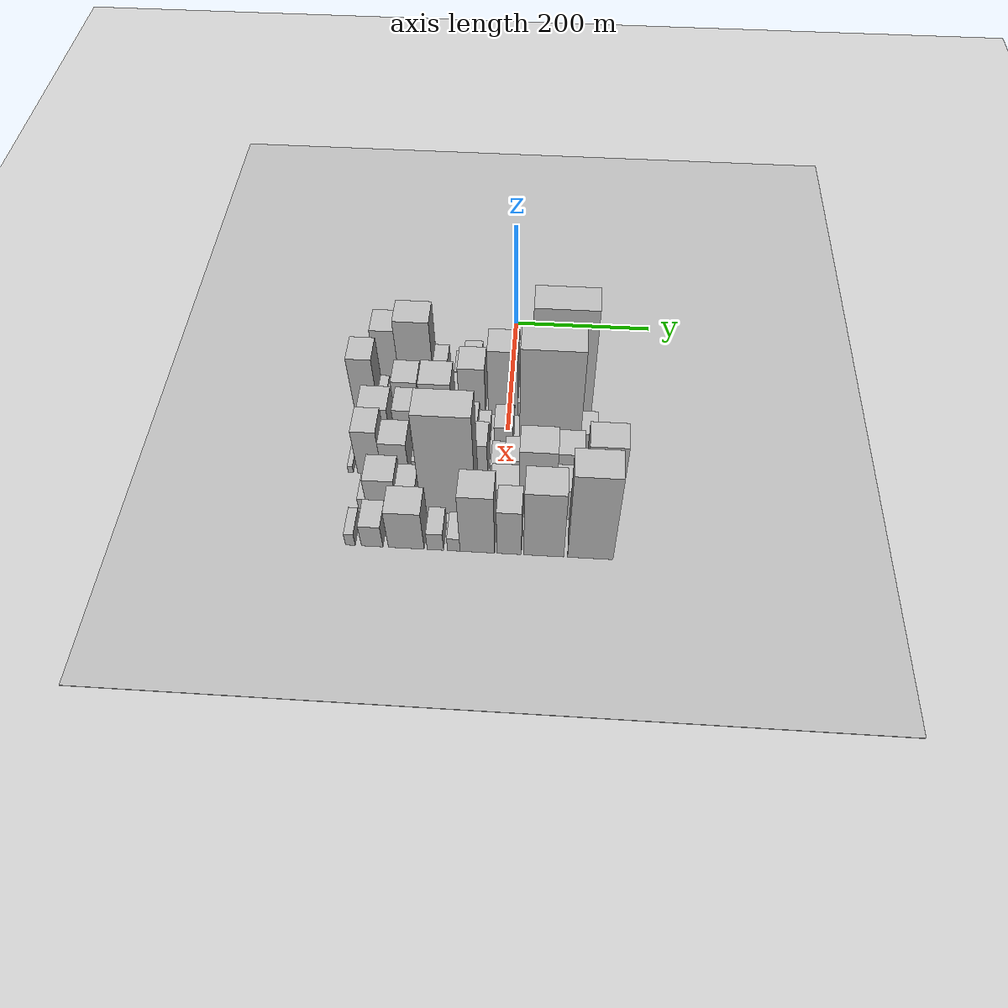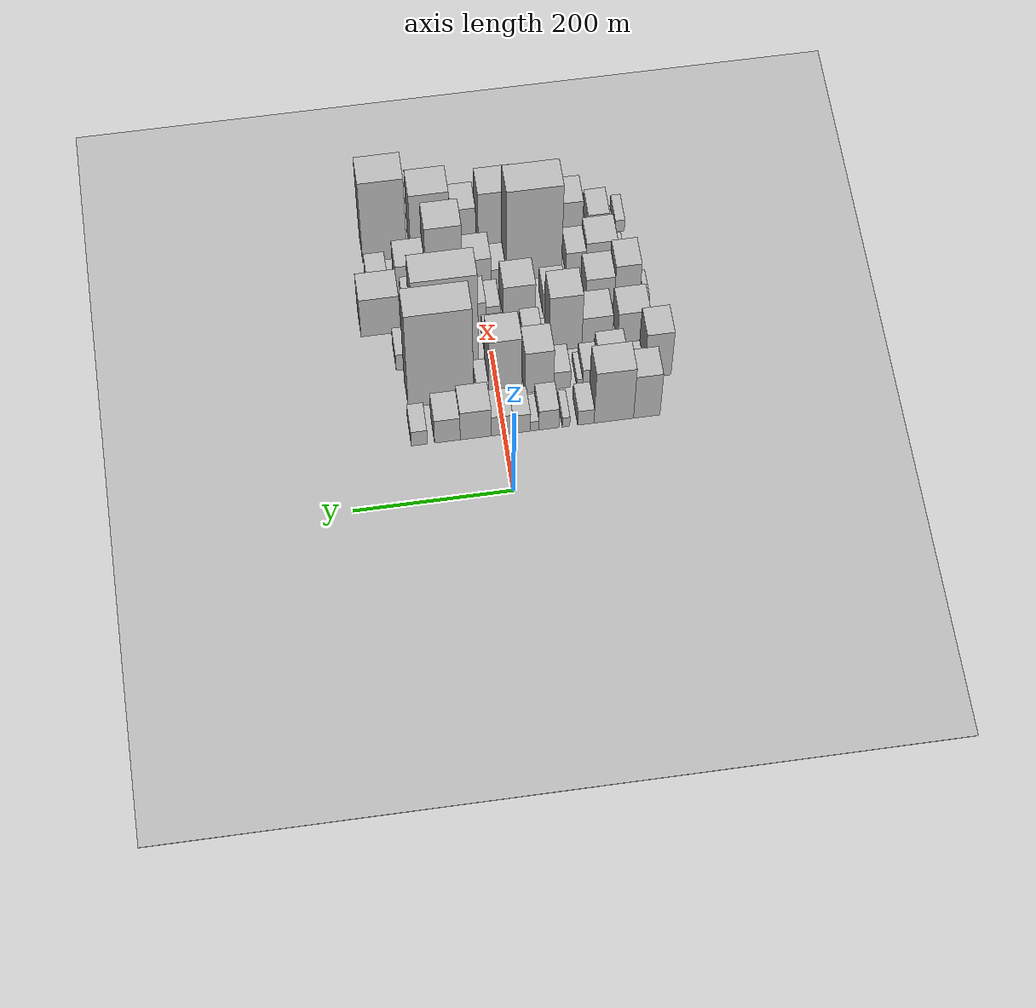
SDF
<sdf version="1.6">
 <world name="default">
  <include><name>ground_plane_1</name><uri>model://HANNAS_ground_plane</uri></include>
  <include>
   <name>ground_plane_2</name>
   <uri>model://HANNAS_ground_plane</uri>
   <pose>100 0 0  0 0 0</pose>
  </include>
  <model name="building_20">
   <static>1</static>
   <pose>100.0000 -180.1216 0 0.000000 0.000000 0.000000</pose>
   <link name="link">
    <pose>0 0 52.50 0 0 0</pose>
    <collision name="collision"><geometry><box><size>40.0000 33.6571 105.0000</size></box></geometry></collision>
    <visual name="visual">
     <cast_shadows>0</cast_shadows>
     <geometry><box><size>40.0000 33.6571 105.0000</size></box></geometry>
     <material>
      <script>
       <uri>model://HANNAS_wall/materials/scripts</uri>
       <uri>model://HANNAS_wall/materials/textures</uri>
       <name>vrc/HANNAS_wall</name>
      </script>
     </material>
    </visual>
   </link>
  </model>
  <model name="building_21">
   <static>1</static>
   <pose>100.0000 -138.2085 0 0.000000 0.000000 0.000000</pose>
   <link name="link">
    <pose>0 0 63.00 0 0 0</pose>
    <collision name="collision"><geometry><box><size>40.0000 50.1690 126.0000</size></box></geometry></collision>
    <visual name="visual">
     <cast_shadows>0</cast_shadows>
     <geometry><box><size>40.0000 50.1690 126.0000</size></box></geometry>
     <material>
      <script>
       <uri>model://HANNAS_wall/materials/scripts</uri>
       <uri>model://HANNAS_wall/materials/textures</uri>
       <name>vrc/HANNAS_wall</name>
      </script>
     </material>
    </visual>
   </link>
  </model>
  <model name="building_22">
   <static>1</static>
   <pose>100.0000 -102.7595 0 0.000000 0.000000 0.000000</pose>
   <link name="link">
    <pose>0 0 18.00 0 0 0</pose>
    <collision name="collision"><geometry><box><size>40.0000 20.7290 36.0000</size></box></geometry></collision>
    <visual name="visual">
     <cast_shadows>0</cast_shadows>
     <geometry><box><size>40.0000 20.7290 36.0000</size></box></geometry>
     <material>
      <script>
       <uri>model://HANNAS_wall/materials/scripts</uri>
       <uri>model://HANNAS_wall/materials/textures</uri>
       <name>vrc/HANNAS_wall</name>
      </script>
     </material>
    </visual>
   </link>
  </model>
  <model name="building_23">
   <static>1</static>
   <pose>100.0000 -77.5715 0 0.000000 0.000000 0.000000</pose>
   <link name="link">
    <pose>0 0 12.00 0 0 0</pose>
    <collision name="collision"><geometry><box><size>40.0000 9.6469 24.0000</size></box></geometry></collision>
    <visual name="visual">
     <cast_shadows>0</cast_shadows>
     <geometry><box><size>40.0000 9.6469 24.0000</size></box></geometry>
     <material>
      <script>
       <uri>model://HANNAS_wall/materials/scripts</uri>
       <uri>model://HANNAS_wall/materials/textures</uri>
       <name>vrc/HANNAS_wall</name>
      </script>
     </material>
    </visual>
   </link>
  </model>
  <model name="building_24">
   <static>1</static>
   <pose>100.0000 -55.9709 0 0.000000 0.000000 0.000000</pose>
   <link name="link">
    <pose>0 0 24.00 0 0 0</pose>
    <collision name="collision"><geometry><box><size>40.0000 25.5543 48.0000</size></box></geometry></collision>
    <visual name="visual">
     <cast_shadows>0</cast_shadows>
     <geometry><box><size>40.0000 25.5543 48.0000</size></box></geometry>
     <material>
      <script>
       <uri>model://HANNAS_wall/materials/scripts</uri>
       <uri>model://HANNAS_wall/materials/textures</uri>
       <name>vrc/HANNAS_wall</name>
      </script>
     </material>
    </visual>
   </link>
  </model>
  <model name="building_25">
   <static>1</static>
   <pose>100.0000 -37.8460 0 0.000000 0.000000 0.000000</pose>
   <link name="link">
    <pose>0 0 12.00 0 0 0</pose>
    <collision name="collision"><geometry><box><size>40.0000 10.6956 24.0000</size></box></geometry></collision>
    <visual name="visual">
     <cast_shadows>0</cast_shadows>
     <geometry><box><size>40.0000 10.6956 24.0000</size></box></geometry>
     <material>
      <script>
       <uri>model://HANNAS_wall/materials/scripts</uri>
       <uri>model://HANNAS_wall/materials/textures</uri>
       <name>vrc/HANNAS_wall</name>
      </script>
     </material>
    </visual>
   </link>
  </model>
  <model name="building_26">
   <static>1</static>
   <pose>100.0000 -21.2353 0 0.000000 0.000000 0.000000</pose>
   <link name="link">
    <pose>0 0 22.50 0 0 0</pose>
    <collision name="collision"><geometry><box><size>40.0000 22.5257 45.0000</size></box></geometry></collision>
    <visual name="visual">
     <cast_shadows>0</cast_shadows>
     <geometry><box><size>40.0000 22.5257 45.0000</size></box></geometry>
     <material>
      <script>
       <uri>model://HANNAS_wall/materials/scripts</uri>
       <uri>model://HANNAS_wall/materials/textures</uri>
       <name>vrc/HANNAS_wall</name>
      </script>
     </material>
    </visual>
   </link>
  </model>
  <model name="building_27">
   <static>1</static>
   <pose>100.0000 3.4044 0 0.000000 0.000000 0.000000</pose>
   <link name="link">
    <pose>0 0 24.00 0 0 0</pose>
    <collision name="collision"><geometry><box><size>40.0000 26.7537 48.0000</size></box></geometry></collision>
    <visual name="visual">
     <cast_shadows>0</cast_shadows>
     <geometry><box><size>40.0000 26.7537 48.0000</size></box></geometry>
     <material>
      <script>
       <uri>model://HANNAS_wall/materials/scripts</uri>
       <uri>model://HANNAS_wall/materials/textures</uri>
       <name>vrc/HANNAS_wall</name>
      </script>
     </material>
    </visual>
   </link>
  </model>
  <model name="building_28">
   <static>1</static>
   <pose>100.0000 36.5227 0 0.000000 0.000000 0.000000</pose>
   <link name="link">
    <pose>0 0 34.50 0 0 0</pose>
    <collision name="collision"><geometry><box><size>40.0000 39.4829 69.0000</size></box></geometry></collision>
    <visual name="visual">
     <cast_shadows>0</cast_shadows>
     <geometry><box><size>40.0000 39.4829 69.0000</size></box></geometry>
     <material>
      <script>
       <uri>model://HANNAS_wall/materials/scripts</uri>
       <uri>model://HANNAS_wall/materials/textures</uri>
       <name>vrc/HANNAS_wall</name>
      </script>
     </material>
    </visual>
   </link>
  </model>
  <model name="building_29">
   <static>1</static>
   <pose>100.0000 72.4692 0 0.000000 0.000000 0.000000</pose>
   <link name="link">
    <pose>0 0 28.50 0 0 0</pose>
    <collision name="collision"><geometry><box><size>40.0000 32.4100 57.0000</size></box></geometry></collision>
    <visual name="visual">
     <cast_shadows>0</cast_shadows>
     <geometry><box><size>40.0000 32.4100 57.0000</size></box></geometry>
     <material>
      <script>
       <uri>model://HANNAS_wall/materials/scripts</uri>
       <uri>model://HANNAS_wall/materials/textures</uri>
       <name>vrc/HANNAS_wall</name>
      </script>
     </material>
    </visual>
   </link>
  </model>
  <model name="building_30">
   <static>1</static>
   <pose>100.0000 107.8525 0 0.000000 0.000000 0.000000</pose>
   <link name="link">
    <pose>0 0 18.00 0 0 0</pose>
    <collision name="collision"><geometry><box><size>40.0000 20.3566 36.0000</size></box></geometry></collision>
    <visual name="visual">
     <cast_shadows>0</cast_shadows>
     <geometry><box><size>40.0000 20.3566 36.0000</size></box></geometry>
     <material>
      <script>
       <uri>model://HANNAS_wall/materials/scripts</uri>
       <uri>model://HANNAS_wall/materials/textures</uri>
       <name>vrc/HANNAS_wall</name>
      </script>
     </material>
    </visual>
   </link>
  </model>
  <model name="building_74">
   <static>1</static>
   <pose>155.0000 -203.1030 0 0.000000 0.000000 0.000000</pose>
   <link name="link">
    <pose>0 0 54.00 0 0 0</pose>
    <collision name="collision"><geometry><box><size>40.0000 34.5952 108.0000</size></box></geometry></collision>
    <visual name="visual">
     <cast_shadows>0</cast_shadows>
     <geometry><box><size>40.0000 34.5952 108.0000</size></box></geometry>
     <material>
      <script>
       <uri>model://HANNAS_wall/materials/scripts</uri>
       <uri>model://HANNAS_wall/materials/textures</uri>
       <name>vrc/HANNAS_wall</name>
      </script>
     </material>
    </visual>
   </link>
  </model>
  <model name="building_75">
   <static>1</static>
   <pose>155.0000 -179.4837 0 0.000000 0.000000 0.000000</pose>
   <link name="link">
    <pose>0 0 13.50 0 0 0</pose>
    <collision name="collision"><geometry><box><size>40.0000 12.6434 27.0000</size></box></geometry></collision>
    <visual name="visual">
     <cast_shadows>0</cast_shadows>
     <geometry><box><size>40.0000 12.6434 27.0000</size></box></geometry>
     <material>
      <script>
       <uri>model://HANNAS_wall/materials/scripts</uri>
       <uri>model://HANNAS_wall/materials/textures</uri>
       <name>vrc/HANNAS_wall</name>
      </script>
     </material>
    </visual>
   </link>
  </model>
  <model name="building_76">
   <static>1</static>
   <pose>155.0000 -168.3558 0 0.000000 0.000000 0.000000</pose>
   <link name="link">
    <pose>0 0 10.50 0 0 0</pose>
    <collision name="collision"><geometry><box><size>40.0000 9.6123 21.0000</size></box></geometry></collision>
    <visual name="visual">
     <cast_shadows>0</cast_shadows>
     <geometry><box><size>40.0000 9.6123 21.0000</size></box></geometry>
     <material>
      <script>
       <uri>model://HANNAS_wall/materials/scripts</uri>
       <uri>model://HANNAS_wall/materials/textures</uri>
       <name>vrc/HANNAS_wall</name>
      </script>
     </material>
    </visual>
   </link>
  </model>
  <model name="building_77">
   <static>1</static>
   <pose>155.0000 -145.5878 0 0.000000 0.000000 0.000000</pose>
   <link name="link">
    <pose>0 0 31.50 0 0 0</pose>
    <collision name="collision"><geometry><box><size>40.0000 35.9239 63.0000</size></box></geometry></collision>
    <visual name="visual">
     <cast_shadows>0</cast_shadows>
     <geometry><box><size>40.0000 35.9239 63.0000</size></box></geometry>
     <material>
      <script>
       <uri>model://HANNAS_wall/materials/scripts</uri>
       <uri>model://HANNAS_wall/materials/textures</uri>
       <name>vrc/HANNAS_wall</name>
      </script>
     </material>
    </visual>
   </link>
  </model>
  <model name="building_78">
   <static>1</static>
   <pose>155.0000 -117.3536 0 0.000000 0.000000 0.000000</pose>
   <link name="link">
    <pose>0 0 19.50 0 0 0</pose>
    <collision name="collision"><geometry><box><size>40.0000 20.5445 39.0000</size></box></geometry></collision>
    <visual name="visual">
     <cast_shadows>0</cast_shadows>
     <geometry><box><size>40.0000 20.5445 39.0000</size></box></geometry>
     <material>
      <script>
       <uri>model://HANNAS_wall/materials/scripts</uri>
       <uri>model://HANNAS_wall/materials/textures</uri>
       <name>vrc/HANNAS_wall</name>
      </script>
     </material>
    </visual>
   </link>
  </model>
  <model name="building_79">
   <static>1</static>
   <pose>155.0000 -103.3924 0 0.000000 0.000000 0.000000</pose>
   <link name="link">
    <pose>0 0 9.00 0 0 0</pose>
    <collision name="collision"><geometry><box><size>40.0000 7.3778 18.0000</size></box></geometry></collision>
    <visual name="visual">
     <cast_shadows>0</cast_shadows>
     <geometry><box><size>40.0000 7.3778 18.0000</size></box></geometry>
     <material>
      <script>
       <uri>model://HANNAS_wall/materials/scripts</uri>
       <uri>model://HANNAS_wall/materials/textures</uri>
       <name>vrc/HANNAS_wall</name>
      </script>
     </material>
    </visual>
   </link>
  </model>
  <model name="building_80">
   <static>1</static>
   <pose>155.0000 -80.8789 0 0.000000 0.000000 0.000000</pose>
   <link name="link">
    <pose>0 0 21.00 0 0 0</pose>
    <collision name="collision"><geometry><box><size>40.0000 21.6493 42.0000</size></box></geometry></collision>
    <visual name="visual">
     <cast_shadows>0</cast_shadows>
     <geometry><box><size>40.0000 21.6493 42.0000</size></box></geometry>
     <material>
      <script>
       <uri>model://HANNAS_wall/materials/scripts</uri>
       <uri>model://HANNAS_wall/materials/textures</uri>
       <name>vrc/HANNAS_wall</name>
      </script>
     </material>
    </visual>
   </link>
  </model>
  <model name="building_81">
   <static>1</static>
   <pose>155.0000 -51.6519 0 0.000000 0.000000 0.000000</pose>
   <link name="link">
    <pose>0 0 49.50 0 0 0</pose>
    <collision name="collision"><geometry><box><size>40.0000 36.8046 99.0000</size></box></geometry></collision>
    <visual name="visual">
     <cast_shadows>0</cast_shadows>
     <geometry><box><size>40.0000 36.8046 99.0000</size></box></geometry>
     <material>
      <script>
       <uri>model://HANNAS_wall/materials/scripts</uri>
       <uri>model://HANNAS_wall/materials/textures</uri>
       <name>vrc/HANNAS_wall</name>
      </script>
     </material>
    </visual>
   </link>
  </model>
  <model name="building_82">
   <static>1</static>
   <pose>155.0000 -8.4640 0 0.000000 0.000000 0.000000</pose>
   <link name="link">
    <pose>0 0 69.00 0 0 0</pose>
    <collision name="collision"><geometry><box><size>40.0000 41.5712 138.0000</size></box></geometry></collision>
    <visual name="visual">
     <cast_shadows>0</cast_shadows>
     <geometry><box><size>40.0000 41.5712 138.0000</size></box></geometry>
     <material>
      <script>
       <uri>model://HANNAS_wall/materials/scripts</uri>
       <uri>model://HANNAS_wall/materials/textures</uri>
       <name>vrc/HANNAS_wall</name>
      </script>
     </material>
    </visual>
   </link>
  </model>
  <model name="building_83">
   <static>1</static>
   <pose>155.0000 20.0709 0 0.000000 0.000000 0.000000</pose>
   <link name="link">
    <pose>0 0 15.00 0 0 0</pose>
    <collision name="collision"><geometry><box><size>40.0000 15.4985 30.0000</size></box></geometry></collision>
    <visual name="visual">
     <cast_shadows>0</cast_shadows>
     <geometry><box><size>40.0000 15.4985 30.0000</size></box></geometry>
     <material>
      <script>
       <uri>model://HANNAS_wall/materials/scripts</uri>
       <uri>model://HANNAS_wall/materials/textures</uri>
       <name>vrc/HANNAS_wall</name>
      </script>
     </material>
    </visual>
   </link>
  </model>
  <model name="building_84">
   <static>1</static>
   <pose>155.0000 73.4142 0 0.000000 0.000000 0.000000</pose>
   <link name="link">
    <pose>0 0 112.50 0 0 0</pose>
    <collision name="collision"><geometry><box><size>40.0000 83.1882 225.0000</size></box></geometry></collision>
    <visual name="visual">
     <cast_shadows>0</cast_shadows>
     <geometry><box><size>40.0000 83.1882 225.0000</size></box></geometry>
     <material>
      <script>
       <uri>model://HANNAS_wall/materials/scripts</uri>
       <uri>model://HANNAS_wall/materials/textures</uri>
       <name>vrc/HANNAS_wall</name>
      </script>
     </material>
    </visual>
   </link>
  </model>
  <model name="building_126">
   <static>1</static>
   <pose>210.0000 -180.7599 0 0.000000 0.000000 0.000000</pose>
   <link name="link">
    <pose>0 0 36.00 0 0 0</pose>
    <collision name="collision"><geometry><box><size>40.0000 40.3775 72.0000</size></box></geometry></collision>
    <visual name="visual">
     <cast_shadows>0</cast_shadows>
     <geometry><box><size>40.0000 40.3775 72.0000</size></box></geometry>
     <material>
      <script>
       <uri>model://HANNAS_wall/materials/scripts</uri>
       <uri>model://HANNAS_wall/materials/textures</uri>
       <name>vrc/HANNAS_wall</name>
      </script>
     </material>
    </visual>
   </link>
  </model>
  <model name="building_127">
   <static>1</static>
   <pose>210.0000 -133.9832 0 0.000000 0.000000 0.000000</pose>
   <link name="link">
    <pose>0 0 36.00 0 0 0</pose>
    <collision name="collision"><geometry><box><size>40.0000 39.1757 72.0000</size></box></geometry></collision>
    <visual name="visual">
     <cast_shadows>0</cast_shadows>
     <geometry><box><size>40.0000 39.1757 72.0000</size></box></geometry>
     <material>
      <script>
       <uri>model://HANNAS_wall/materials/scripts</uri>
       <uri>model://HANNAS_wall/materials/textures</uri>
       <name>vrc/HANNAS_wall</name>
      </script>
     </material>
    </visual>
   </link>
  </model>
  <model name="building_128">
   <static>1</static>
   <pose>210.0000 -93.2815 0 0.000000 0.000000 0.000000</pose>
   <link name="link">
    <pose>0 0 66.00 0 0 0</pose>
    <collision name="collision"><geometry><box><size>40.0000 42.2277 132.0000</size></box></geometry></collision>
    <visual name="visual">
     <cast_shadows>0</cast_shadows>
     <geometry><box><size>40.0000 42.2277 132.0000</size></box></geometry>
     <material>
      <script>
       <uri>model://HANNAS_wall/materials/scripts</uri>
       <uri>model://HANNAS_wall/materials/textures</uri>
       <name>vrc/HANNAS_wall</name>
      </script>
     </material>
    </visual>
   </link>
  </model>
  <model name="building_129">
   <static>1</static>
   <pose>210.0000 -67.9918 0 0.000000 0.000000 0.000000</pose>
   <link name="link">
    <pose>0 0 9.00 0 0 0</pose>
    <collision name="collision"><geometry><box><size>40.0000 8.3517 18.0000</size></box></geometry></collision>
    <visual name="visual">
     <cast_shadows>0</cast_shadows>
     <geometry><box><size>40.0000 8.3517 18.0000</size></box></geometry>
     <material>
      <script>
       <uri>model://HANNAS_wall/materials/scripts</uri>
       <uri>model://HANNAS_wall/materials/textures</uri>
       <name>vrc/HANNAS_wall</name>
      </script>
     </material>
    </visual>
   </link>
  </model>
  <model name="building_130">
   <static>1</static>
   <pose>210.0000 -51.6586 0 0.000000 0.000000 0.000000</pose>
   <link name="link">
    <pose>0 0 24.00 0 0 0</pose>
    <collision name="collision"><geometry><box><size>40.0000 24.3146 48.0000</size></box></geometry></collision>
    <visual name="visual">
     <cast_shadows>0</cast_shadows>
     <geometry><box><size>40.0000 24.3146 48.0000</size></box></geometry>
     <material>
      <script>
       <uri>model://HANNAS_wall/materials/scripts</uri>
       <uri>model://HANNAS_wall/materials/textures</uri>
       <name>vrc/HANNAS_wall</name>
      </script>
     </material>
    </visual>
   </link>
  </model>
  <model name="building_131">
   <static>1</static>
   <pose>210.0000 -31.2239 0 0.000000 0.000000 0.000000</pose>
   <link name="link">
    <pose>0 0 15.00 0 0 0</pose>
    <collision name="collision"><geometry><box><size>40.0000 16.5548 30.0000</size></box></geometry></collision>
    <visual name="visual">
     <cast_shadows>0</cast_shadows>
     <geometry><box><size>40.0000 16.5548 30.0000</size></box></geometry>
     <material>
      <script>
       <uri>model://HANNAS_wall/materials/scripts</uri>
       <uri>model://HANNAS_wall/materials/textures</uri>
       <name>vrc/HANNAS_wall</name>
      </script>
     </material>
    </visual>
   </link>
  </model>
  <model name="building_132">
   <static>1</static>
   <pose>210.0000 -3.9739 0 0.000000 0.000000 0.000000</pose>
   <link name="link">
    <pose>0 0 22.50 0 0 0</pose>
    <collision name="collision"><geometry><box><size>40.0000 25.9451 45.0000</size></box></geometry></collision>
    <visual name="visual">
     <cast_shadows>0</cast_shadows>
     <geometry><box><size>40.0000 25.9451 45.0000</size></box></geometry>
     <material>
      <script>
       <uri>model://HANNAS_wall/materials/scripts</uri>
       <uri>model://HANNAS_wall/materials/textures</uri>
       <name>vrc/HANNAS_wall</name>
      </script>
     </material>
    </visual>
   </link>
  </model>
  <model name="building_133">
   <static>1</static>
   <pose>210.0000 59.1884 0 0.000000 0.000000 0.000000</pose>
   <link name="link">
    <pose>0 0 105.00 0 0 0</pose>
    <collision name="collision"><geometry><box><size>40.0000 82.3796 210.0000</size></box></geometry></collision>
    <visual name="visual">
     <cast_shadows>0</cast_shadows>
     <geometry><box><size>40.0000 82.3796 210.0000</size></box></geometry>
     <material>
      <script>
       <uri>model://HANNAS_wall/materials/scripts</uri>
       <uri>model://HANNAS_wall/materials/textures</uri>
       <name>vrc/HANNAS_wall</name>
      </script>
     </material>
    </visual>
   </link>
  </model>
  <model name="building_134">
   <static>1</static>
   <pose>210.0000 111.8678 0 0.000000 0.000000 0.000000</pose>
   <link name="link">
    <pose>0 0 19.50 0 0 0</pose>
    <collision name="collision"><geometry><box><size>40.0000 22.9790 39.0000</size></box></geometry></collision>
    <visual name="visual">
     <cast_shadows>0</cast_shadows>
     <geometry><box><size>40.0000 22.9790 39.0000</size></box></geometry>
     <material>
      <script>
       <uri>model://HANNAS_wall/materials/scripts</uri>
       <uri>model://HANNAS_wall/materials/textures</uri>
       <name>vrc/HANNAS_wall</name>
      </script>
     </material>
    </visual>
   </link>
  </model>
  <model name="building_174">
   <static>1</static>
   <pose>265.0000 -207.2648 0 0.000000 0.000000 0.000000</pose>
   <link name="link">
    <pose>0 0 7.50 0 0 0</pose>
    <collision name="collision"><geometry><box><size>40.0000 6.9899 15.0000</size></box></geometry></collision>
    <visual name="visual">
     <cast_shadows>0</cast_shadows>
     <geometry><box><size>40.0000 6.9899 15.0000</size></box></geometry>
     <material>
      <script>
       <uri>model://HANNAS_wall/materials/scripts</uri>
       <uri>model://HANNAS_wall/materials/textures</uri>
       <name>vrc/HANNAS_wall</name>
      </script>
     </material>
    </visual>
   </link>
  </model>
  <model name="building_175">
   <static>1</static>
   <pose>265.0000 -181.3751 0 0.000000 0.000000 0.000000</pose>
   <link name="link">
    <pose>0 0 48.00 0 0 0</pose>
    <collision name="collision"><geometry><box><size>40.0000 32.7893 96.0000</size></box></geometry></collision>
    <visual name="visual">
     <cast_shadows>0</cast_shadows>
     <geometry><box><size>40.0000 32.7893 96.0000</size></box></geometry>
     <material>
      <script>
       <uri>model://HANNAS_wall/materials/scripts</uri>
       <uri>model://HANNAS_wall/materials/textures</uri>
       <name>vrc/HANNAS_wall</name>
      </script>
     </material>
    </visual>
   </link>
  </model>
  <model name="building_176">
   <static>1</static>
   <pose>265.0000 -146.4206 0 0.000000 0.000000 0.000000</pose>
   <link name="link">
    <pose>0 0 36.00 0 0 0</pose>
    <collision name="collision"><geometry><box><size>40.0000 37.1198 72.0000</size></box></geometry></collision>
    <visual name="visual">
     <cast_shadows>0</cast_shadows>
     <geometry><box><size>40.0000 37.1198 72.0000</size></box></geometry>
     <material>
      <script>
       <uri>model://HANNAS_wall/materials/scripts</uri>
       <uri>model://HANNAS_wall/materials/textures</uri>
       <name>vrc/HANNAS_wall</name>
      </script>
     </material>
    </visual>
   </link>
  </model>
  <model name="building_177">
   <static>1</static>
   <pose>265.0000 -112.7512 0 0.000000 0.000000 0.000000</pose>
   <link name="link">
    <pose>0 0 18.00 0 0 0</pose>
    <collision name="collision"><geometry><box><size>40.0000 20.2190 36.0000</size></box></geometry></collision>
    <visual name="visual">
     <cast_shadows>0</cast_shadows>
     <geometry><box><size>40.0000 20.2190 36.0000</size></box></geometry>
     <material>
      <script>
       <uri>model://HANNAS_wall/materials/scripts</uri>
       <uri>model://HANNAS_wall/materials/textures</uri>
       <name>vrc/HANNAS_wall</name>
      </script>
     </material>
    </visual>
   </link>
  </model>
  <model name="building_178">
   <static>1</static>
   <pose>265.0000 -87.7753 0 0.000000 0.000000 0.000000</pose>
   <link name="link">
    <pose>0 0 25.50 0 0 0</pose>
    <collision name="collision"><geometry><box><size>40.0000 29.7329 51.0000</size></box></geometry></collision>
    <visual name="visual">
     <cast_shadows>0</cast_shadows>
     <geometry><box><size>40.0000 29.7329 51.0000</size></box></geometry>
     <material>
      <script>
       <uri>model://HANNAS_wall/materials/scripts</uri>
       <uri>model://HANNAS_wall/materials/textures</uri>
       <name>vrc/HANNAS_wall</name>
      </script>
     </material>
    </visual>
   </link>
  </model>
  <model name="building_179">
   <static>1</static>
   <pose>265.0000 -42.2687 0 0.000000 0.000000 0.000000</pose>
   <link name="link">
    <pose>0 0 39.00 0 0 0</pose>
    <collision name="collision"><geometry><box><size>40.0000 41.2803 78.0000</size></box></geometry></collision>
    <visual name="visual">
     <cast_shadows>0</cast_shadows>
     <geometry><box><size>40.0000 41.2803 78.0000</size></box></geometry>
     <material>
      <script>
       <uri>model://HANNAS_wall/materials/scripts</uri>
       <uri>model://HANNAS_wall/materials/textures</uri>
       <name>vrc/HANNAS_wall</name>
      </script>
     </material>
    </visual>
   </link>
  </model>
  <model name="building_180">
   <static>1</static>
   <pose>265.0000 -8.4573 0 0.000000 0.000000 0.000000</pose>
   <link name="link">
    <pose>0 0 18.00 0 0 0</pose>
    <collision name="collision"><geometry><box><size>40.0000 18.3424 36.0000</size></box></geometry></collision>
    <visual name="visual">
     <cast_shadows>0</cast_shadows>
     <geometry><box><size>40.0000 18.3424 36.0000</size></box></geometry>
     <material>
      <script>
       <uri>model://HANNAS_wall/materials/scripts</uri>
       <uri>model://HANNAS_wall/materials/textures</uri>
       <name>vrc/HANNAS_wall</name>
      </script>
     </material>
    </visual>
   </link>
  </model>
  <model name="building_181">
   <static>1</static>
   <pose>265.0000 14.2465 0 0.000000 0.000000 0.000000</pose>
   <link name="link">
    <pose>0 0 24.00 0 0 0</pose>
    <collision name="collision"><geometry><box><size>40.0000 27.0651 48.0000</size></box></geometry></collision>
    <visual name="visual">
     <cast_shadows>0</cast_shadows>
     <geometry><box><size>40.0000 27.0651 48.0000</size></box></geometry>
     <material>
      <script>
       <uri>model://HANNAS_wall/materials/scripts</uri>
       <uri>model://HANNAS_wall/materials/textures</uri>
       <name>vrc/HANNAS_wall</name>
      </script>
     </material>
    </visual>
   </link>
  </model>
  <model name="building_182">
   <static>1</static>
   <pose>265.0000 37.1599 0 0.000000 0.000000 0.000000</pose>
   <link name="link">
    <pose>0 0 18.00 0 0 0</pose>
    <collision name="collision"><geometry><box><size>40.0000 18.7616 36.0000</size></box></geometry></collision>
    <visual name="visual">
     <cast_shadows>0</cast_shadows>
     <geometry><box><size>40.0000 18.7616 36.0000</size></box></geometry>
     <material>
      <script>
       <uri>model://HANNAS_wall/materials/scripts</uri>
       <uri>model://HANNAS_wall/materials/textures</uri>
       <name>vrc/HANNAS_wall</name>
      </script>
     </material>
    </visual>
   </link>
  </model>
  <model name="building_183">
   <static>1</static>
   <pose>265.0000 54.2100 0 0.000000 0.000000 0.000000</pose>
   <link name="link">
    <pose>0 0 9.00 0 0 0</pose>
    <collision name="collision"><geometry><box><size>40.0000 7.3387 18.0000</size></box></geometry></collision>
    <visual name="visual">
     <cast_shadows>0</cast_shadows>
     <geometry><box><size>40.0000 7.3387 18.0000</size></box></geometry>
     <material>
      <script>
       <uri>model://HANNAS_wall/materials/scripts</uri>
       <uri>model://HANNAS_wall/materials/textures</uri>
       <name>vrc/HANNAS_wall</name>
      </script>
     </material>
    </visual>
   </link>
  </model>
  <model name="building_184">
   <static>1</static>
   <pose>265.0000 86.8997 0 0.000000 0.000000 0.000000</pose>
   <link name="link">
    <pose>0 0 34.50 0 0 0</pose>
    <collision name="collision"><geometry><box><size>40.0000 38.0406 69.0000</size></box></geometry></collision>
    <visual name="visual">
     <cast_shadows>0</cast_shadows>
     <geometry><box><size>40.0000 38.0406 69.0000</size></box></geometry>
     <material>
      <script>
       <uri>model://HANNAS_wall/materials/scripts</uri>
       <uri>model://HANNAS_wall/materials/textures</uri>
       <name>vrc/HANNAS_wall</name>
      </script>
     </material>
    </visual>
   </link>
  </model>
  <model name="building_185">
   <static>1</static>
   <pose>265.0000 136.2984 0 0.000000 0.000000 0.000000</pose>
   <link name="link">
    <pose>0 0 45.00 0 0 0</pose>
    <collision name="collision"><geometry><box><size>40.0000 50.7569 90.0000</size></box></geometry></collision>
    <visual name="visual">
     <cast_shadows>0</cast_shadows>
     <geometry><box><size>40.0000 50.7569 90.0000</size></box></geometry>
     <material>
      <script>
       <uri>model://HANNAS_wall/materials/scripts</uri>
       <uri>model://HANNAS_wall/materials/textures</uri>
       <name>vrc/HANNAS_wall</name>
      </script>
     </material>
    </visual>
   </link>
  </model>
  <model name="building_227">
   <static>1</static>
   <pose>320.0000 -182.4794 0 0.000000 0.000000 0.000000</pose>
   <link name="link">
    <pose>0 0 12.00 0 0 0</pose>
    <collision name="collision"><geometry><box><size>40.0000 11.1061 24.0000</size></box></geometry></collision>
    <visual name="visual">
     <cast_shadows>0</cast_shadows>
     <geometry><box><size>40.0000 11.1061 24.0000</size></box></geometry>
     <material>
      <script>
       <uri>model://HANNAS_wall/materials/scripts</uri>
       <uri>model://HANNAS_wall/materials/textures</uri>
       <name>vrc/HANNAS_wall</name>
      </script>
     </material>
    </visual>
   </link>
  </model>
  <model name="building_228">
   <static>1</static>
   <pose>320.0000 -156.8543 0 0.000000 0.000000 0.000000</pose>
   <link name="link">
    <pose>0 0 34.50 0 0 0</pose>
    <collision name="collision"><geometry><box><size>40.0000 40.1441 69.0000</size></box></geometry></collision>
    <visual name="visual">
     <cast_shadows>0</cast_shadows>
     <geometry><box><size>40.0000 40.1441 69.0000</size></box></geometry>
     <material>
      <script>
       <uri>model://HANNAS_wall/materials/scripts</uri>
       <uri>model://HANNAS_wall/materials/textures</uri>
       <name>vrc/HANNAS_wall</name>
      </script>
     </material>
    </visual>
   </link>
  </model>
  <model name="building_229">
   <static>1</static>
   <pose>320.0000 -123.8178 0 0.000000 0.000000 0.000000</pose>
   <link name="link">
    <pose>0 0 25.50 0 0 0</pose>
    <collision name="collision"><geometry><box><size>40.0000 25.9290 51.0000</size></box></geometry></collision>
    <visual name="visual">
     <cast_shadows>0</cast_shadows>
     <geometry><box><size>40.0000 25.9290 51.0000</size></box></geometry>
     <material>
      <script>
       <uri>model://HANNAS_wall/materials/scripts</uri>
       <uri>model://HANNAS_wall/materials/textures</uri>
       <name>vrc/HANNAS_wall</name>
      </script>
     </material>
    </visual>
   </link>
  </model>
  <model name="building_230">
   <static>1</static>
   <pose>320.0000 -68.8762 0 0.000000 0.000000 0.000000</pose>
   <link name="link">
    <pose>0 0 106.50 0 0 0</pose>
    <collision name="collision"><geometry><box><size>40.0000 71.9541 213.0000</size></box></geometry></collision>
    <visual name="visual">
     <cast_shadows>0</cast_shadows>
     <geometry><box><size>40.0000 71.9541 213.0000</size></box></geometry>
     <material>
      <script>
       <uri>model://HANNAS_wall/materials/scripts</uri>
       <uri>model://HANNAS_wall/materials/textures</uri>
       <name>vrc/HANNAS_wall</name>
      </script>
     </material>
    </visual>
   </link>
  </model>
  <model name="building_231">
   <static>1</static>
   <pose>320.0000 -23.1779 0 0.000000 0.000000 0.000000</pose>
   <link name="link">
    <pose>0 0 16.50 0 0 0</pose>
    <collision name="collision"><geometry><box><size>40.0000 19.4424 33.0000</size></box></geometry></collision>
    <visual name="visual">
     <cast_shadows>0</cast_shadows>
     <geometry><box><size>40.0000 19.4424 33.0000</size></box></geometry>
     <material>
      <script>
       <uri>model://HANNAS_wall/materials/scripts</uri>
       <uri>model://HANNAS_wall/materials/textures</uri>
       <name>vrc/HANNAS_wall</name>
      </script>
     </material>
    </visual>
   </link>
  </model>
  <model name="building_232">
   <static>1</static>
   <pose>320.0000 5.0546 0 0.000000 0.000000 0.000000</pose>
   <link name="link">
    <pose>0 0 31.50 0 0 0</pose>
    <collision name="collision"><geometry><box><size>40.0000 37.0225 63.0000</size></box></geometry></collision>
    <visual name="visual">
     <cast_shadows>0</cast_shadows>
     <geometry><box><size>40.0000 37.0225 63.0000</size></box></geometry>
     <material>
      <script>
       <uri>model://HANNAS_wall/materials/scripts</uri>
       <uri>model://HANNAS_wall/materials/textures</uri>
       <name>vrc/HANNAS_wall</name>
      </script>
     </material>
    </visual>
   </link>
  </model>
  <model name="building_233">
   <static>1</static>
   <pose>320.0000 47.1760 0 0.000000 0.000000 0.000000</pose>
   <link name="link">
    <pose>0 0 75.00 0 0 0</pose>
    <collision name="collision"><geometry><box><size>40.0000 47.2204 150.0000</size></box></geometry></collision>
    <visual name="visual">
     <cast_shadows>0</cast_shadows>
     <geometry><box><size>40.0000 47.2204 150.0000</size></box></geometry>
     <material>
      <script>
       <uri>model://HANNAS_wall/materials/scripts</uri>
       <uri>model://HANNAS_wall/materials/textures</uri>
       <name>vrc/HANNAS_wall</name>
      </script>
     </material>
    </visual>
   </link>
  </model>
  <model name="building_234">
   <static>1</static>
   <pose>320.0000 90.1578 0 0.000000 0.000000 0.000000</pose>
   <link name="link">
    <pose>0 0 34.50 0 0 0</pose>
    <collision name="collision"><geometry><box><size>40.0000 38.7432 69.0000</size></box></geometry></collision>
    <visual name="visual">
     <cast_shadows>0</cast_shadows>
     <geometry><box><size>40.0000 38.7432 69.0000</size></box></geometry>
     <material>
      <script>
       <uri>model://HANNAS_wall/materials/scripts</uri>
       <uri>model://HANNAS_wall/materials/textures</uri>
       <name>vrc/HANNAS_wall</name>
      </script>
     </material>
    </visual>
   </link>
  </model>
  <model name="building_235">
   <static>1</static>
   <pose>320.0000 132.7796 0 0.000000 0.000000 0.000000</pose>
   <link name="link">
    <pose>0 0 22.50 0 0 0</pose>
    <collision name="collision"><geometry><box><size>40.0000 26.5004 45.0000</size></box></geometry></collision>
    <visual name="visual">
     <cast_shadows>0</cast_shadows>
     <geometry><box><size>40.0000 26.5004 45.0000</size></box></geometry>
     <material>
      <script>
       <uri>model://HANNAS_wall/materials/scripts</uri>
       <uri>model://HANNAS_wall/materials/textures</uri>
       <name>vrc/HANNAS_wall</name>
      </script>
     </material>
    </visual>
   </link>
  </model>
  <model name="building_279">
   <static>1</static>
   <pose>375.0000 -189.9000 0 0.000000 0.000000 0.000000</pose>
   <link name="link">
    <pose>0 0 13.50 0 0 0</pose>
    <collision name="collision"><geometry><box><size>40.0000 12.4445 27.0000</size></box></geometry></collision>
    <visual name="visual">
     <cast_shadows>0</cast_shadows>
     <geometry><box><size>40.0000 12.4445 27.0000</size></box></geometry>
     <material>
      <script>
       <uri>model://HANNAS_wall/materials/scripts</uri>
       <uri>model://HANNAS_wall/materials/textures</uri>
       <name>vrc/HANNAS_wall</name>
      </script>
     </material>
    </visual>
   </link>
  </model>
  <model name="building_280">
   <static>1</static>
   <pose>375.0000 -161.7350 0 0.000000 0.000000 0.000000</pose>
   <link name="link">
    <pose>0 0 24.00 0 0 0</pose>
    <collision name="collision"><geometry><box><size>40.0000 27.8856 48.0000</size></box></geometry></collision>
    <visual name="visual">
     <cast_shadows>0</cast_shadows>
     <geometry><box><size>40.0000 27.8856 48.0000</size></box></geometry>
     <material>
      <script>
       <uri>model://HANNAS_wall/materials/scripts</uri>
       <uri>model://HANNAS_wall/materials/textures</uri>
       <name>vrc/HANNAS_wall</name>
      </script>
     </material>
    </visual>
   </link>
  </model>
  <model name="building_281">
   <static>1</static>
   <pose>375.0000 -117.7712 0 0.000000 0.000000 0.000000</pose>
   <link name="link">
    <pose>0 0 42.00 0 0 0</pose>
    <collision name="collision"><geometry><box><size>40.0000 46.0419 84.0000</size></box></geometry></collision>
    <visual name="visual">
     <cast_shadows>0</cast_shadows>
     <geometry><box><size>40.0000 46.0419 84.0000</size></box></geometry>
     <material>
      <script>
       <uri>model://HANNAS_wall/materials/scripts</uri>
       <uri>model://HANNAS_wall/materials/textures</uri>
       <name>vrc/HANNAS_wall</name>
      </script>
     </material>
    </visual>
   </link>
  </model>
  <model name="building_282">
   <static>1</static>
   <pose>375.0000 -80.2458 0 0.000000 0.000000 0.000000</pose>
   <link name="link">
    <pose>0 0 19.50 0 0 0</pose>
    <collision name="collision"><geometry><box><size>40.0000 21.0089 39.0000</size></box></geometry></collision>
    <visual name="visual">
     <cast_shadows>0</cast_shadows>
     <geometry><box><size>40.0000 21.0089 39.0000</size></box></geometry>
     <material>
      <script>
       <uri>model://HANNAS_wall/materials/scripts</uri>
       <uri>model://HANNAS_wall/materials/textures</uri>
       <name>vrc/HANNAS_wall</name>
      </script>
     </material>
    </visual>
   </link>
  </model>
  <model name="building_283">
   <static>1</static>
   <pose>375.0000 -56.7024 0 0.000000 0.000000 0.000000</pose>
   <link name="link">
    <pose>0 0 15.00 0 0 0</pose>
    <collision name="collision"><geometry><box><size>40.0000 16.0779 30.0000</size></box></geometry></collision>
    <visual name="visual">
     <cast_shadows>0</cast_shadows>
     <geometry><box><size>40.0000 16.0779 30.0000</size></box></geometry>
     <material>
      <script>
       <uri>model://HANNAS_wall/materials/scripts</uri>
       <uri>model://HANNAS_wall/materials/textures</uri>
       <name>vrc/HANNAS_wall</name>
      </script>
     </material>
    </visual>
   </link>
  </model>
  <model name="building_284">
   <static>1</static>
   <pose>375.0000 -26.4690 0 0.000000 0.000000 0.000000</pose>
   <link name="link">
    <pose>0 0 64.50 0 0 0</pose>
    <collision name="collision"><geometry><box><size>40.0000 44.3889 129.0000</size></box></geometry></collision>
    <visual name="visual">
     <cast_shadows>0</cast_shadows>
     <geometry><box><size>40.0000 44.3889 129.0000</size></box></geometry>
     <material>
      <script>
       <uri>model://HANNAS_wall/materials/scripts</uri>
       <uri>model://HANNAS_wall/materials/textures</uri>
       <name>vrc/HANNAS_wall</name>
      </script>
     </material>
    </visual>
   </link>
  </model>
  <model name="building_285">
   <static>1</static>
   <pose>375.0000 14.2398 0 0.000000 0.000000 0.000000</pose>
   <link name="link">
    <pose>0 0 49.50 0 0 0</pose>
    <collision name="collision"><geometry><box><size>40.0000 31.0287 99.0000</size></box></geometry></collision>
    <visual name="visual">
     <cast_shadows>0</cast_shadows>
     <geometry><box><size>40.0000 31.0287 99.0000</size></box></geometry>
     <material>
      <script>
       <uri>model://HANNAS_wall/materials/scripts</uri>
       <uri>model://HANNAS_wall/materials/textures</uri>
       <name>vrc/HANNAS_wall</name>
      </script>
     </material>
    </visual>
   </link>
  </model>
  <model name="building_286">
   <static>1</static>
   <pose>375.0000 58.2660 0 0.000000 0.000000 0.000000</pose>
   <link name="link">
    <pose>0 0 72.00 0 0 0</pose>
    <collision name="collision"><geometry><box><size>40.0000 51.0237 144.0000</size></box></geometry></collision>
    <visual name="visual">
     <cast_shadows>0</cast_shadows>
     <geometry><box><size>40.0000 51.0237 144.0000</size></box></geometry>
     <material>
      <script>
       <uri>model://HANNAS_wall/materials/scripts</uri>
       <uri>model://HANNAS_wall/materials/textures</uri>
       <name>vrc/HANNAS_wall</name>
      </script>
     </material>
    </visual>
   </link>
  </model>
  <model name="building_287">
   <static>1</static>
   <pose>375.0000 117.5717 0 0.000000 0.000000 0.000000</pose>
   <link name="link">
    <pose>0 0 93.00 0 0 0</pose>
    <collision name="collision"><geometry><box><size>40.0000 57.5877 186.0000</size></box></geometry></collision>
    <visual name="visual">
     <cast_shadows>0</cast_shadows>
     <geometry><box><size>40.0000 57.5877 186.0000</size></box></geometry>
     <material>
      <script>
       <uri>model://HANNAS_wall/materials/scripts</uri>
       <uri>model://HANNAS_wall/materials/textures</uri>
       <name>vrc/HANNAS_wall</name>
      </script>
     </material>
    </visual>
   </link>
  </model>
 </world>
</sdf>
